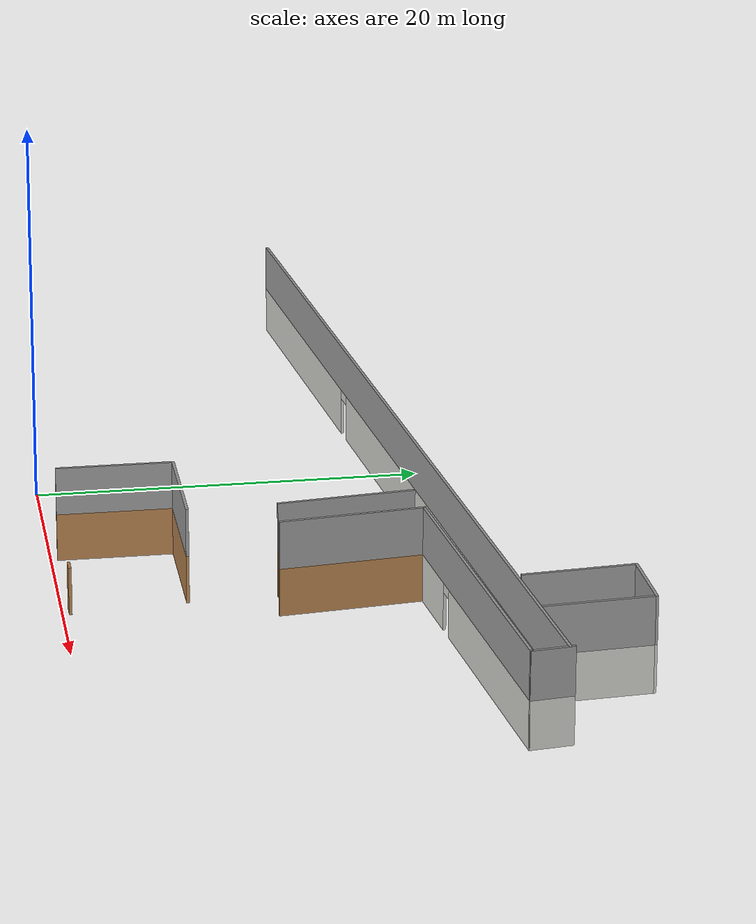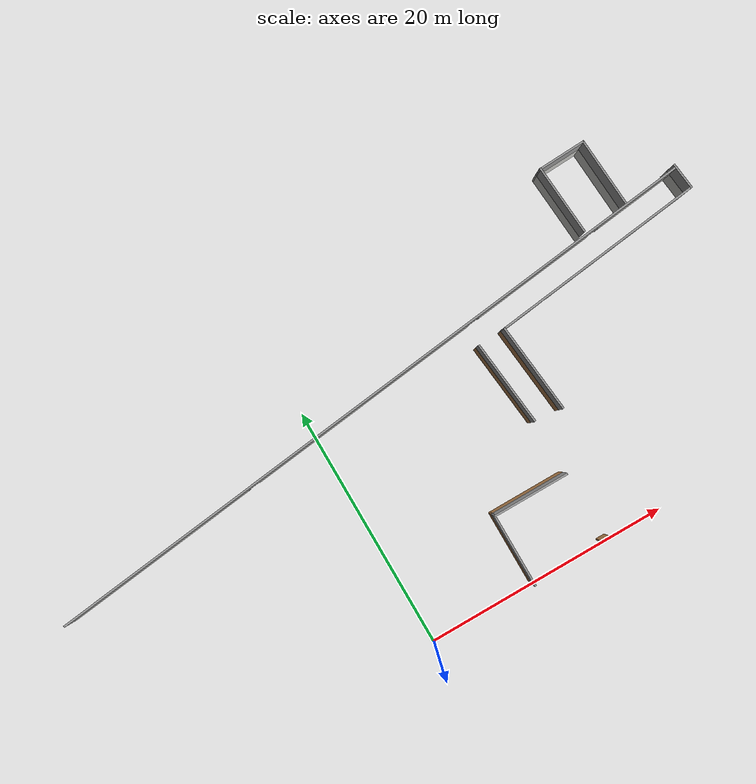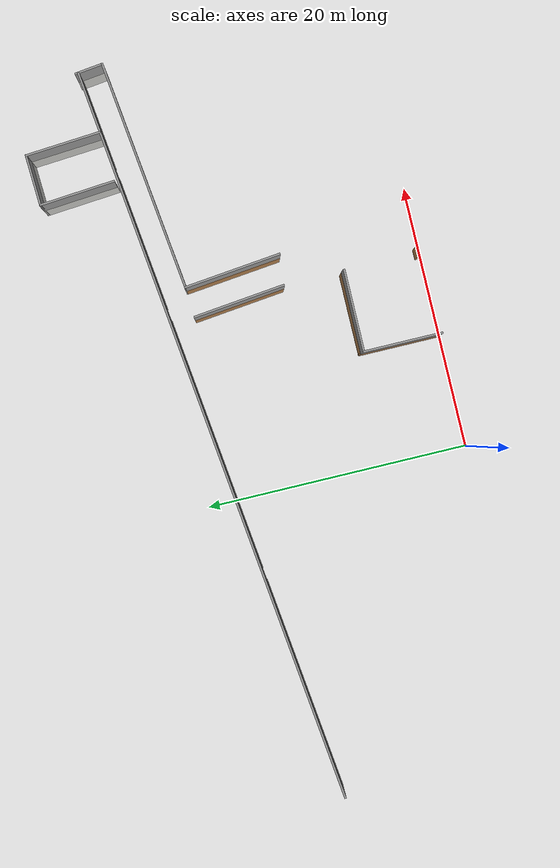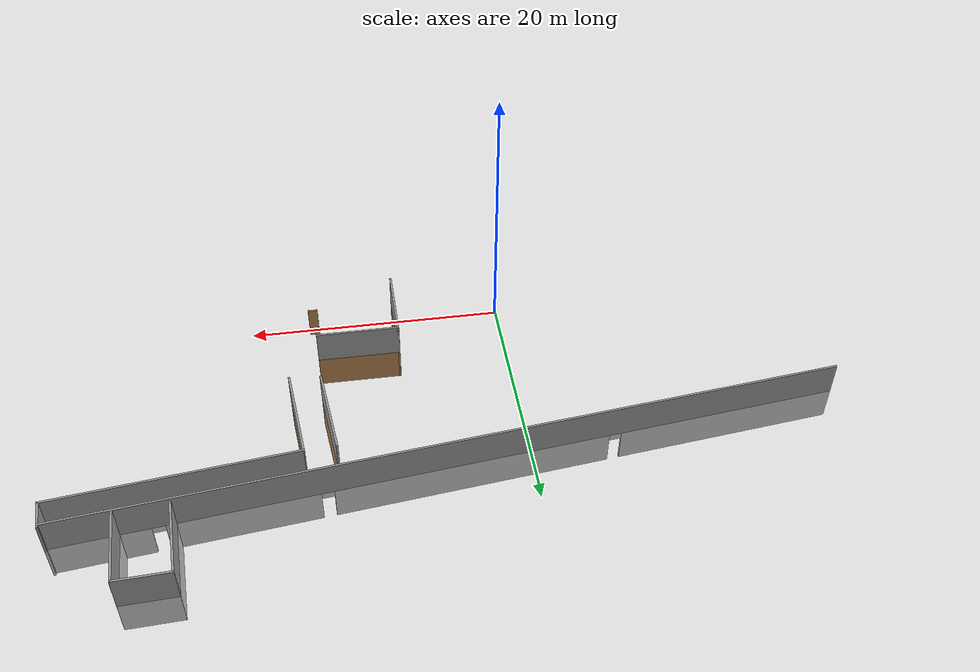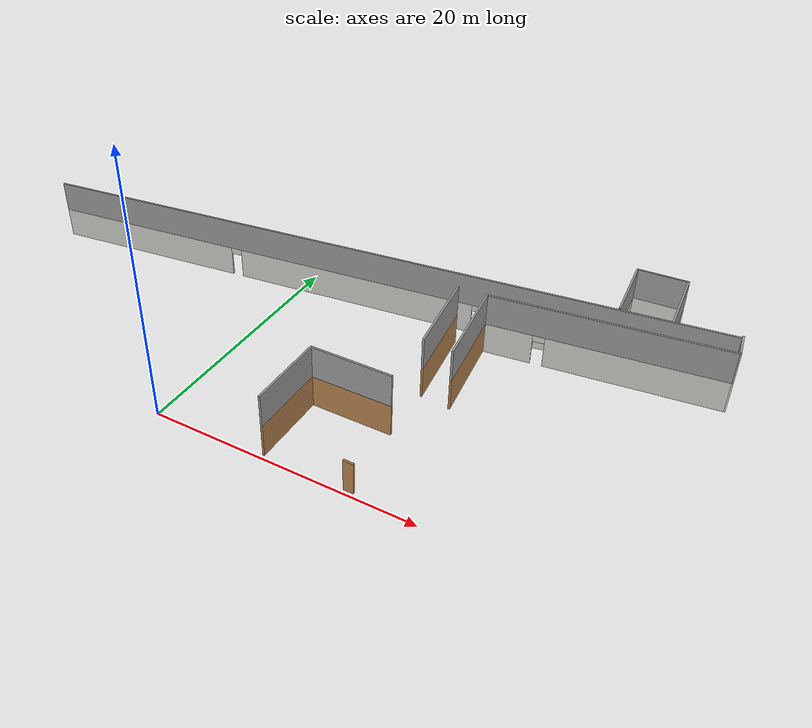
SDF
<sdf version="1.6">
 <model name="FokusFloor2-colour">
  <pose>2.32223 1.2425 0 0 -0 0</pose>
  <link name="Wall_122">
   <collision name="Wall_122_Collision">
    <geometry><box><size>6 0.15 2.5</size></box></geometry>
    <pose>0 0 1.25 0 -0 0</pose>
   </collision>
   <visual name="Wall_122_Visual">
    <pose>0 0 1.25 0 -0 0</pose>
    <geometry><box><size>6 0.15 2.5</size></box></geometry>
    <material>
     <script><uri>file://media/materials/scripts/gazebo.material</uri><name>Gazebo/Grey</name></script>
     <ambient>1 1 1 1</ambient>
    </material>
    <meta><layer>1</layer></meta>
   </visual>
   <pose>6.27313 2.08282 2.5 0 -0 1.5708</pose>
  </link>
  <link name="Wall_123">
   <collision name="Wall_123_Collision">
    <geometry><box><size>6.25 0.15 2.5</size></box></geometry>
    <pose>0 0 1.25 0 -0 0</pose>
   </collision>
   <visual name="Wall_123_Visual">
    <pose>0 0 1.25 0 -0 0</pose>
    <geometry><box><size>6.25 0.15 2.5</size></box></geometry>
    <material>
     <script><uri>file://media/materials/scripts/gazebo.material</uri><name>Gazebo/Grey</name></script>
     <ambient>1 1 1 1</ambient>
    </material>
    <meta><layer>1</layer></meta>
   </visual>
   <pose>9.32312 5.00782 2.5 0 -0 0</pose>
  </link>
  <link name="Wall_125">
   <collision name="Wall_125_Collision">
    <geometry><box><size>5.7279 0.15 2.5</size></box></geometry>
    <pose>0 0 1.25 0 -0 0</pose>
   </collision>
   <visual name="Wall_125_Visual">
    <pose>0 0 1.25 0 -0 0</pose>
    <geometry><box><size>5.7279 0.15 2.5</size></box></geometry>
    <material>
     <script><uri>file://media/materials/scripts/gazebo.material</uri><name>Gazebo/Grey</name></script>
     <ambient>1 1 1 1</ambient>
    </material>
    <meta><layer>1</layer></meta>
   </visual>
   <pose>22.3425 22.5794 2.5 0 -0 1.65043</pose>
  </link>
  <link name="Wall_126">
   <collision name="Wall_126_Collision">
    <geometry><box><size>3.90284 0.15 2.5</size></box></geometry>
    <pose>0 0 1.25 0 -0 0</pose>
   </collision>
   <visual name="Wall_126_Visual">
    <pose>0 0 1.25 0 -0 0</pose>
    <geometry><box><size>3.90284 0.15 2.5</size></box></geometry>
    <material>
     <script><uri>file://media/materials/scripts/gazebo.material</uri><name>Gazebo/Grey</name></script>
     <ambient>1 1 1 1</ambient>
    </material>
    <meta><layer>1</layer></meta>
   </visual>
   <pose>23.9951 25.4652 2.5 0 -0 0.045737</pose>
  </link>
  <link name="Wall_127">
   <collision name="Wall_127_Collision">
    <geometry><box><size>5.72443 0.15 2.5</size></box></geometry>
    <pose>0 0 1.25 0 -0 0</pose>
   </collision>
   <visual name="Wall_127_Visual">
    <pose>0 0 1.25 0 -0 0</pose>
    <geometry><box><size>5.72443 0.15 2.5</size></box></geometry>
    <material>
     <script><uri>file://media/materials/scripts/gazebo.material</uri><name>Gazebo/Grey</name></script>
     <ambient>1 1 1 1</ambient>
    </material>
    <meta><layer>1</layer></meta>
   </visual>
   <pose>26.0684 22.751 2.5 0 -0 -1.49938</pose>
  </link>
  <link name="Wall_13">
   <collision name="Wall_13_Collision">
    <geometry><box><size>6.98667 0.15 2.5</size></box></geometry>
    <pose>0 0 1.25 0 -0 0</pose>
   </collision>
   <visual name="Wall_13_Visual">
    <pose>0 0 1.25 0 -0 0</pose>
    <geometry><box><size>6.98667 0.15 2.5</size></box></geometry>
    <material>
     <script><uri>file://media/materials/scripts/gazebo.material</uri><name>Gazebo/Wood</name></script>
     <ambient>1 1 1 1</ambient>
    </material>
    <meta><layer>0</layer></meta>
   </visual>
   <pose>11.9644 12.9631 0 0 -0 1.67871</pose>
  </link>
  <link name="Wall_16">
   <collision name="Wall_16_Collision">
    <geometry><box><size>7.38555 0.15 2.5</size></box></geometry>
    <pose>0 0 1.25 0 -0 0</pose>
   </collision>
   <visual name="Wall_16_Visual">
    <pose>0 0 1.25 0 -0 0</pose>
    <geometry><box><size>7.38555 0.15 2.5</size></box></geometry>
    <material>
     <script><uri>file://media/materials/scripts/gazebo.material</uri><name>Gazebo/Wood</name></script>
     <ambient>1 1 1 1</ambient>
    </material>
    <meta><layer>0</layer></meta>
   </visual>
   <pose>14.2284 12.9319 0 0 -0 1.67623</pose>
  </link>
  <link name="Wall_25">
   <pose>22.4452 17.5757 0 0 -0 0.121078</pose>
   <visual name="Wall_25_Visual_0">
    <pose>-6.88871 0 1.25 0 -0 0</pose>
    <geometry><box><size>3.69442 0.15 2.5</size></box></geometry>
    <material>
     <script><uri>file://media/materials/scripts/gazebo.material</uri><name>Gazebo/CeilingTiled</name></script>
     <ambient>1 1 1 1</ambient>
    </material>
    <meta><layer>0</layer></meta>
   </visual>
   <collision name="Wall_25_Collision_0">
    <geometry><box><size>3.69442 0.15 2.5</size></box></geometry>
    <pose>-6.88871 0 1.25 0 -0 0</pose>
   </collision>
   <visual name="Wall_25_Visual_1">
    <pose>2.29721 0 1.25 0 -0 0</pose>
    <geometry><box><size>12.8774 0.15 2.5</size></box></geometry>
    <material>
     <script><uri>file://media/materials/scripts/gazebo.material</uri><name>Gazebo/CeilingTiled</name></script>
     <ambient>1 1 1 1</ambient>
    </material>
    <meta><layer>0</layer></meta>
   </visual>
   <collision name="Wall_25_Collision_1">
    <geometry><box><size>12.8774 0.15 2.5</size></box></geometry>
    <pose>2.29721 0 1.25 0 -0 0</pose>
   </collision>
   <visual name="Wall_25_Visual_2">
    <pose>-4.5915 0 2.25 0 -0 0</pose>
    <geometry><box><size>0.9 0.15 0.5</size></box></geometry>
    <material>
     <script><uri>file://media/materials/scripts/gazebo.material</uri><name>Gazebo/CeilingTiled</name></script>
     <ambient>1 1 1 1</ambient>
    </material>
    <meta><layer>0</layer></meta>
   </visual>
   <collision name="Wall_25_Collision_2">
    <geometry><box><size>0.9 0.15 0.5</size></box></geometry>
    <pose>-4.5915 0 2.25 0 -0 0</pose>
   </collision>
  </link>
  <link name="Wall_26">
   <collision name="Wall_26_Collision">
    <geometry><box><size>2.18804 0.15 2.5</size></box></geometry>
    <pose>0 0 1.25 0 -0 0</pose>
   </collision>
   <visual name="Wall_26_Visual">
    <pose>0 0 1.25 0 -0 0</pose>
    <geometry><box><size>2.18804 0.15 2.5</size></box></geometry>
    <material>
     <script><uri>file://media/materials/scripts/gazebo.material</uri><name>Gazebo/CeilingTiled</name></script>
     <ambient>1 1 1 1</ambient>
    </material>
    <meta><layer>0</layer></meta>
   </visual>
   <pose>30.9214 19.6335 0 0 -0 1.6902</pose>
  </link>
  <link name="Wall_28">
   <pose>2.93899 17.1746 0 0 -0 -3.02424</pose>
   <visual name="Wall_28_Visual_0">
    <pose>-24.7474 0 1.25 0 -0 0</pose>
    <geometry><box><size>6.76299 0.15 2.5</size></box></geometry>
    <material>
     <script><uri>file://media/materials/scripts/gazebo.material</uri><name>Gazebo/CeilingTiled</name></script>
     <ambient>1 1 1 1</ambient>
    </material>
    <meta><layer>0</layer></meta>
   </visual>
   <collision name="Wall_28_Collision_0">
    <geometry><box><size>6.76299 0.15 2.5</size></box></geometry>
    <pose>-24.7474 0 1.25 0 -0 0</pose>
   </collision>
   <visual name="Wall_28_Visual_1">
    <pose>-15.2683 0 1.25 0 -0 0</pose>
    <geometry><box><size>10.3953 0.15 2.5</size></box></geometry>
    <material>
     <script><uri>file://media/materials/scripts/gazebo.material</uri><name>Gazebo/CeilingTiled</name></script>
     <ambient>1 1 1 1</ambient>
    </material>
    <meta><layer>0</layer></meta>
   </visual>
   <collision name="Wall_28_Collision_1">
    <geometry><box><size>10.3953 0.15 2.5</size></box></geometry>
    <pose>-15.2683 0 1.25 0 -0 0</pose>
   </collision>
   <visual name="Wall_28_Visual_2">
    <pose>0.764675 0 1.25 0 -0 0</pose>
    <geometry><box><size>19.8706 0.15 2.5</size></box></geometry>
    <material>
     <script><uri>file://media/materials/scripts/gazebo.material</uri><name>Gazebo/CeilingTiled</name></script>
     <ambient>1 1 1 1</ambient>
    </material>
    <meta><layer>0</layer></meta>
   </visual>
   <collision name="Wall_28_Collision_2">
    <geometry><box><size>19.8706 0.15 2.5</size></box></geometry>
    <pose>0.764675 0 1.25 0 -0 0</pose>
   </collision>
   <visual name="Wall_28_Visual_3">
    <pose>19.8645 0 1.25 0 -0 0</pose>
    <geometry><box><size>16.5289 0.15 2.5</size></box></geometry>
    <material>
     <script><uri>file://media/materials/scripts/gazebo.material</uri><name>Gazebo/CeilingTiled</name></script>
     <ambient>1 1 1 1</ambient>
    </material>
    <meta><layer>0</layer></meta>
   </visual>
   <collision name="Wall_28_Collision_3">
    <geometry><box><size>16.5289 0.15 2.5</size></box></geometry>
    <pose>19.8645 0 1.25 0 -0 0</pose>
   </collision>
   <visual name="Wall_28_Visual_4">
    <pose>-20.9159 0 2.25 0 -0 0</pose>
    <geometry><box><size>0.9 0.15 0.5</size></box></geometry>
    <material>
     <script><uri>file://media/materials/scripts/gazebo.material</uri><name>Gazebo/CeilingTiled</name></script>
     <ambient>1 1 1 1</ambient>
    </material>
    <meta><layer>0</layer></meta>
   </visual>
   <collision name="Wall_28_Collision_4">
    <geometry><box><size>0.9 0.15 0.5</size></box></geometry>
    <pose>-20.9159 0 2.25 0 -0 0</pose>
   </collision>
   <visual name="Wall_28_Visual_5">
    <pose>-9.62064 0 2.25 0 -0 0</pose>
    <geometry><box><size>0.9 0.15 0.5</size></box></geometry>
    <material>
     <script><uri>file://media/materials/scripts/gazebo.material</uri><name>Gazebo/CeilingTiled</name></script>
     <ambient>1 1 1 1</ambient>
    </material>
    <meta><layer>0</layer></meta>
   </visual>
   <collision name="Wall_28_Collision_5">
    <geometry><box><size>0.9 0.15 0.5</size></box></geometry>
    <pose>-9.62064 0 2.25 0 -0 0</pose>
   </collision>
   <visual name="Wall_28_Visual_6">
    <pose>11.15 0 2.25 0 -0 0</pose>
    <geometry><box><size>0.9 0.15 0.5</size></box></geometry>
    <material>
     <script><uri>file://media/materials/scripts/gazebo.material</uri><name>Gazebo/CeilingTiled</name></script>
     <ambient>1 1 1 1</ambient>
    </material>
    <meta><layer>0</layer></meta>
   </visual>
   <collision name="Wall_28_Collision_6">
    <geometry><box><size>0.9 0.15 0.5</size></box></geometry>
    <pose>11.15 0 2.25 0 -0 0</pose>
   </collision>
  </link>
  <link name="Wall_66">
   <collision name="Wall_66_Collision">
    <geometry><box><size>0.75 0.15 2.5</size></box></geometry>
    <pose>0 0 1.25 0 -0 0</pose>
   </collision>
   <visual name="Wall_66_Visual">
    <pose>0 0 1.25 0 -0 0</pose>
    <geometry><box><size>0.75 0.15 2.5</size></box></geometry>
    <material>
     <script><uri>file://media/materials/scripts/gazebo.material</uri><name>Gazebo/Wood</name></script>
     <ambient>1 1 1 1</ambient>
    </material>
    <meta><layer>0</layer></meta>
   </visual>
   <pose>12.6731 -0.842177 0 0 -0 0</pose>
  </link>
  <link name="Wall_69">
   <collision name="Wall_69_Collision">
    <geometry><box><size>6 0.15 2.5</size></box></geometry>
    <pose>0 0 1.25 0 -0 0</pose>
   </collision>
   <visual name="Wall_69_Visual">
    <pose>0 0 1.25 0 -0 0</pose>
    <geometry><box><size>6 0.15 2.5</size></box></geometry>
    <material>
     <script><uri>file://media/materials/scripts/gazebo.material</uri><name>Gazebo/Wood</name></script>
     <ambient>1 1 1 1</ambient>
    </material>
    <meta><layer>0</layer></meta>
   </visual>
   <pose>6.27313 2.08282 0 0 -0 1.5708</pose>
  </link>
  <link name="Wall_70">
   <collision name="Wall_70_Collision">
    <geometry><box><size>6.25 0.15 2.5</size></box></geometry>
    <pose>0 0 1.25 0 -0 0</pose>
   </collision>
   <visual name="Wall_70_Visual">
    <pose>0 0 1.25 0 -0 0</pose>
    <geometry><box><size>6.25 0.15 2.5</size></box></geometry>
    <material>
     <script><uri>file://media/materials/scripts/gazebo.material</uri><name>Gazebo/Wood</name></script>
     <ambient>1 1 1 1</ambient>
    </material>
    <meta><layer>0</layer></meta>
   </visual>
   <pose>9.32313 5.00782 0 0 -0 0</pose>
  </link>
  <link name="Wall_74">
   <collision name="Wall_74_Collision">
    <geometry><box><size>5.7279 0.15 2.5</size></box></geometry>
    <pose>0 0 1.25 0 -0 0</pose>
   </collision>
   <visual name="Wall_74_Visual">
    <pose>0 0 1.25 0 -0 0</pose>
    <geometry><box><size>5.7279 0.15 2.5</size></box></geometry>
    <material>
     <script><uri>file://media/materials/scripts/gazebo.material</uri><name>Gazebo/CeilingTiled</name></script>
     <ambient>1 1 1 1</ambient>
    </material>
    <meta><layer>0</layer></meta>
   </visual>
   <pose>22.3425 22.5794 0 0 -0 1.65043</pose>
  </link>
  <link name="Wall_75">
   <collision name="Wall_75_Collision">
    <geometry><box><size>3.90284 0.15 2.5</size></box></geometry>
    <pose>0 0 1.25 0 -0 0</pose>
   </collision>
   <visual name="Wall_75_Visual">
    <pose>0 0 1.25 0 -0 0</pose>
    <geometry><box><size>3.90284 0.15 2.5</size></box></geometry>
    <material>
     <script><uri>file://media/materials/scripts/gazebo.material</uri><name>Gazebo/CeilingTiled</name></script>
     <ambient>1 1 1 1</ambient>
    </material>
    <meta><layer>0</layer></meta>
   </visual>
   <pose>23.9951 25.4652 0 0 -0 0.045737</pose>
  </link>
  <link name="Wall_78">
   <collision name="Wall_78_Collision">
    <geometry><box><size>5.72443 0.15 2.5</size></box></geometry>
    <pose>0 0 1.25 0 -0 0</pose>
   </collision>
   <visual name="Wall_78_Visual">
    <pose>0 0 1.25 0 -0 0</pose>
    <geometry><box><size>5.72443 0.15 2.5</size></box></geometry>
    <material>
     <script><uri>file://media/materials/scripts/gazebo.material</uri><name>Gazebo/CeilingTiled</name></script>
     <ambient>1 1 1 1</ambient>
    </material>
    <meta><layer>0</layer></meta>
   </visual>
   <pose>26.0684 22.751 0 0 -0 -1.49938</pose>
  </link>
  <link name="Wall_89">
   <collision name="Wall_89_Collision">
    <geometry><box><size>6.98667 0.15 2.5</size></box></geometry>
    <pose>0 0 1.25 0 -0 0</pose>
   </collision>
   <visual name="Wall_89_Visual">
    <pose>0 0 1.25 0 -0 0</pose>
    <geometry><box><size>6.98667 0.15 2.5</size></box></geometry>
    <material>
     <script><uri>file://media/materials/scripts/gazebo.material</uri><name>Gazebo/Grey</name></script>
     <ambient>1 1 1 1</ambient>
    </material>
    <meta><layer>1</layer></meta>
   </visual>
   <pose>11.9644 12.9631 2.5 0 -0 1.67871</pose>
  </link>
  <link name="Wall_90">
   <collision name="Wall_90_Collision">
    <geometry><box><size>7.38555 0.15 2.5</size></box></geometry>
    <pose>0 0 1.25 0 -0 0</pose>
   </collision>
   <visual name="Wall_90_Visual">
    <pose>0 0 1.25 0 -0 0</pose>
    <geometry><box><size>7.38555 0.15 2.5</size></box></geometry>
    <material>
     <script><uri>file://media/materials/scripts/gazebo.material</uri><name>Gazebo/Grey</name></script>
     <ambient>1 1 1 1</ambient>
    </material>
    <meta><layer>1</layer></meta>
   </visual>
   <pose>14.2284 12.9319 2.5 0 -0 1.67623</pose>
  </link>
  <link name="Wall_95">
   <collision name="Wall_95_Collision">
    <geometry><box><size>17.4718 0.15 2.5</size></box></geometry>
    <pose>0 0 1.25 0 -0 0</pose>
   </collision>
   <visual name="Wall_95_Visual">
    <pose>0 0 1.25 0 -0 0</pose>
    <geometry><box><size>17.4718 0.15 2.5</size></box></geometry>
    <material>
     <script><uri>file://media/materials/scripts/gazebo.material</uri><name>Gazebo/Grey</name></script>
     <ambient>1 1 1 1</ambient>
    </material>
    <meta><layer>1</layer></meta>
   </visual>
   <pose>22.4452 17.5757 2.5 0 -0 0.121078</pose>
  </link>
  <link name="Wall_96">
   <collision name="Wall_96_Collision">
    <geometry><box><size>2.18804 0.15 2.5</size></box></geometry>
    <pose>0 0 1.25 0 -0 0</pose>
   </collision>
   <visual name="Wall_96_Visual">
    <pose>0 0 1.25 0 -0 0</pose>
    <geometry><box><size>2.18804 0.15 2.5</size></box></geometry>
    <material>
     <script><uri>file://media/materials/scripts/gazebo.material</uri><name>Gazebo/Grey</name></script>
     <ambient>1 1 1 1</ambient>
    </material>
    <meta><layer>1</layer></meta>
   </visual>
   <pose>30.9214 19.6335 2.5 0 -0 1.6902</pose>
  </link>
  <link name="Wall_97">
   <collision name="Wall_97_Collision">
    <geometry><box><size>56.2579 0.15 2.5</size></box></geometry>
    <pose>0 0 1.25 0 -0 0</pose>
   </collision>
   <visual name="Wall_97_Visual">
    <pose>0 0 1.25 0 -0 0</pose>
    <geometry><box><size>56.2579 0.15 2.5</size></box></geometry>
    <material>
     <script><uri>file://media/materials/scripts/gazebo.material</uri><name>Gazebo/Grey</name></script>
     <ambient>1 1 1 1</ambient>
    </material>
    <meta><layer>1</layer></meta>
   </visual>
   <pose>2.93899 17.1746 2.5 0 -0 -3.02424</pose>
  </link>
  <static>1</static>
 </model>
</sdf>
